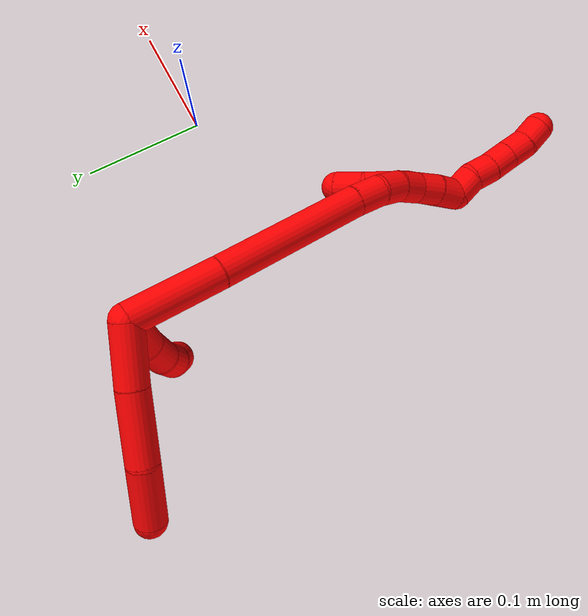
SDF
<sdf version="1.7">
 <world name="default">
  <model name="2">
   <static>0</static>
   <link name="2">
    <collision name="collision-cylinder-e_1_2_8">
     <pose>-0.012271 0.006217 -0.018693 -2.82051 -0.557111 2.11116</pose>
     <geometry><cylinder><radius>0.0125</radius><length>0.046418</length></cylinder></geometry>
     <surface>
      <friction><ode><mu>1.16</mu><mu2>1.16</mu2><slip1>0</slip1><slip2>0</slip2></ode></friction>
      <contact><ode><kp>1e+06</kp><kd>1</kd><max_vel>0</max_vel><min_depth>0.001</min_depth></ode></contact>
     </surface>
    </collision>
    <visual name="visual-cylinder-e_1_2_8">
     <pose>-0.012271 0.006217 -0.018693 -2.82051 -0.557111 2.11116</pose>
     <geometry><cylinder><radius>0.0125</radius><length>0.046418</length></cylinder></geometry>
     <material><ambient>1 0 0 1</ambient></material>
    </visual>
    <collision name="collision-cylinder-e_2_8_9">
     <pose>-0.039625 0.01814 -0.05998 -2.89423 -0.574411 2.34483</pose>
     <geometry><cylinder><radius>0.0125</radius><length>0.055517</length></cylinder></geometry>
     <surface>
      <friction><ode><mu>1.16</mu><mu2>1.16</mu2><slip1>0</slip1><slip2>0</slip2></ode></friction>
      <contact><ode><kp>1e+06</kp><kd>1</kd><max_vel>0</max_vel><min_depth>0.001</min_depth></ode></contact>
     </surface>
    </collision>
    <visual name="visual-cylinder-e_2_8_9">
     <pose>-0.039625 0.01814 -0.05998 -2.89423 -0.574411 2.34483</pose>
     <geometry><cylinder><radius>0.0125</radius><length>0.055517</length></cylinder></geometry>
     <material><ambient>1 0 0 1</ambient></material>
    </visual>
    <collision name="collision-cylinder-e_3_9_6">
     <pose>-0.06566 0.024719 -0.103948 -3.10075 -0.473192 2.97258</pose>
     <geometry><cylinder><radius>0.0125</radius><length>0.048065</length></cylinder></geometry>
     <surface>
      <friction><ode><mu>1.16</mu><mu2>1.16</mu2><slip1>0</slip1><slip2>0</slip2></ode></friction>
      <contact><ode><kp>1e+06</kp><kd>1</kd><max_vel>0</max_vel><min_depth>0.001</min_depth></ode></contact>
     </surface>
    </collision>
    <visual name="visual-cylinder-e_3_9_6">
     <pose>-0.06566 0.024719 -0.103948 -3.10075 -0.473192 2.97258</pose>
     <geometry><cylinder><radius>0.0125</radius><length>0.048065</length></cylinder></geometry>
     <material><ambient>1 0 0 1</ambient></material>
    </visual>
    <collision name="collision-cylinder-e_1_2_10">
     <pose>-0.007418 -0.008775 -0.012335 2.5233 -0.455663 -1.25586</pose>
     <geometry><cylinder><radius>0.0125</radius><length>0.033716</length></cylinder></geometry>
     <surface>
      <friction><ode><mu>1.16</mu><mu2>1.16</mu2><slip1>0</slip1><slip2>0</slip2></ode></friction>
      <contact><ode><kp>1e+06</kp><kd>1</kd><max_vel>0</max_vel><min_depth>0.001</min_depth></ode></contact>
     </surface>
    </collision>
    <visual name="visual-cylinder-e_1_2_10">
     <pose>-0.007418 -0.008775 -0.012335 2.5233 -0.455663 -1.25586</pose>
     <geometry><cylinder><radius>0.0125</radius><length>0.033716</length></cylinder></geometry>
     <material><ambient>1 0 0 1</ambient></material>
    </visual>
    <collision name="collision-cylinder-e_2_10_11">
     <pose>-0.019584 -0.025757 -0.033167 2.37346 -0.382098 -0.892714</pose>
     <geometry><cylinder><radius>0.0125</radius><length>0.025463</length></cylinder></geometry>
     <surface>
      <friction><ode><mu>1.16</mu><mu2>1.16</mu2><slip1>0</slip1><slip2>0</slip2></ode></friction>
      <contact><ode><kp>1e+06</kp><kd>1</kd><max_vel>0</max_vel><min_depth>0.001</min_depth></ode></contact>
     </surface>
    </collision>
    <visual name="visual-cylinder-e_2_10_11">
     <pose>-0.019584 -0.025757 -0.033167 2.37346 -0.382098 -0.892714</pose>
     <geometry><cylinder><radius>0.0125</radius><length>0.025463</length></cylinder></geometry>
     <material><ambient>1 0 0 1</ambient></material>
    </visual>
    <collision name="collision-cylinder-e_3_11_12">
     <pose>-0.026692 -0.041776 -0.047529 2.21491 -0.237163 -0.468185</pose>
     <geometry><cylinder><radius>0.0125</radius><length>0.020099</length></cylinder></geometry>
     <surface>
      <friction><ode><mu>1.16</mu><mu2>1.16</mu2><slip1>0</slip1><slip2>0</slip2></ode></friction>
      <contact><ode><kp>1e+06</kp><kd>1</kd><max_vel>0</max_vel><min_depth>0.001</min_depth></ode></contact>
     </surface>
    </collision>
    <visual name="visual-cylinder-e_3_11_12">
     <pose>-0.026692 -0.041776 -0.047529 2.21491 -0.237163 -0.468185</pose>
     <geometry><cylinder><radius>0.0125</radius><length>0.020099</length></cylinder></geometry>
     <material><ambient>1 0 0 1</ambient></material>
    </visual>
    <collision name="collision-cylinder-e_4_12_5">
     <pose>-0.028134 -0.058509 -0.058581 2.09738 0.088869 0.154253</pose>
     <geometry><cylinder><radius>0.0125</radius><length>0.020723</length></cylinder></geometry>
     <surface>
      <friction><ode><mu>1.16</mu><mu2>1.16</mu2><slip1>0</slip1><slip2>0</slip2></ode></friction>
      <contact><ode><kp>1e+06</kp><kd>1</kd><max_vel>0</max_vel><min_depth>0.001</min_depth></ode></contact>
     </surface>
    </collision>
    <visual name="visual-cylinder-e_4_12_5">
     <pose>-0.028134 -0.058509 -0.058581 2.09738 0.088869 0.154253</pose>
     <geometry><cylinder><radius>0.0125</radius><length>0.020723</length></cylinder></geometry>
     <material><ambient>1 0 0 1</ambient></material>
    </visual>
    <collision name="collision-cylinder-e_1_2_13">
     <pose>-0.016958 -0.027421 0.016689 1.02406 -0.486005 -0.276871</pose>
     <geometry><cylinder><radius>0.0125</radius><length>0.072608</length></cylinder></geometry>
     <surface>
      <friction><ode><mu>1.16</mu><mu2>1.16</mu2><slip1>0</slip1><slip2>0</slip2></ode></friction>
      <contact><ode><kp>1e+06</kp><kd>1</kd><max_vel>0</max_vel><min_depth>0.001</min_depth></ode></contact>
     </surface>
    </collision>
    <visual name="visual-cylinder-e_1_2_13">
     <pose>-0.016958 -0.027421 0.016689 1.02406 -0.486005 -0.276871</pose>
     <geometry><cylinder><radius>0.0125</radius><length>0.072608</length></cylinder></geometry>
     <material><ambient>1 0 0 1</ambient></material>
    </visual>
    <collision name="collision-cylinder-e_2_13_14">
     <pose>-0.060354 -0.10376 0.05894 1.08928 -0.44672 -0.273476</pose>
     <geometry><cylinder><radius>0.0125</radius><length>0.122399</length></cylinder></geometry>
     <surface>
      <friction><ode><mu>1.16</mu><mu2>1.16</mu2><slip1>0</slip1><slip2>0</slip2></ode></friction>
      <contact><ode><kp>1e+06</kp><kd>1</kd><max_vel>0</max_vel><min_depth>0.001</min_depth></ode></contact>
     </surface>
    </collision>
    <visual name="visual-cylinder-e_2_13_14">
     <pose>-0.060354 -0.10376 0.05894 1.08928 -0.44672 -0.273476</pose>
     <geometry><cylinder><radius>0.0125</radius><length>0.122399</length></cylinder></geometry>
     <material><ambient>1 0 0 1</ambient></material>
    </visual>
    <collision name="collision-cylinder-e_3_14_15">
     <pose>-0.092633 -0.16224 0.089096 1.12297 -0.503233 -0.320623</pose>
     <geometry><cylinder><radius>0.0125</radius><length>0.02422</length></cylinder></geometry>
     <surface>
      <friction><ode><mu>1.16</mu><mu2>1.16</mu2><slip1>0</slip1><slip2>0</slip2></ode></friction>
      <contact><ode><kp>1e+06</kp><kd>1</kd><max_vel>0</max_vel><min_depth>0.001</min_depth></ode></contact>
     </surface>
    </collision>
    <visual name="visual-cylinder-e_3_14_15">
     <pose>-0.092633 -0.16224 0.089096 1.12297 -0.503233 -0.320623</pose>
     <geometry><cylinder><radius>0.0125</radius><length>0.02422</length></cylinder></geometry>
     <material><ambient>1 0 0 1</ambient></material>
    </visual>
    <collision name="collision-cylinder-e_4_15_16">
     <pose>-0.103609 -0.180615 0.095125 1.40923 -0.522019 -0.44661</pose>
     <geometry><cylinder><radius>0.0125</radius><length>0.020602</length></cylinder></geometry>
     <surface>
      <friction><ode><mu>1.16</mu><mu2>1.16</mu2><slip1>0</slip1><slip2>0</slip2></ode></friction>
      <contact><ode><kp>1e+06</kp><kd>1</kd><max_vel>0</max_vel><min_depth>0.001</min_depth></ode></contact>
     </surface>
    </collision>
    <visual name="visual-cylinder-e_4_15_16">
     <pose>-0.103609 -0.180615 0.095125 1.40923 -0.522019 -0.44661</pose>
     <geometry><cylinder><radius>0.0125</radius><length>0.020602</length></cylinder></geometry>
     <material><ambient>1 0 0 1</ambient></material>
    </visual>
    <collision name="collision-cylinder-e_5_16_17">
     <pose>-0.11493 -0.197357 0.096208 1.61537 -0.661906 -0.689798</pose>
     <geometry><cylinder><radius>0.0125</radius><length>0.020122</length></cylinder></geometry>
     <surface>
      <friction><ode><mu>1.16</mu><mu2>1.16</mu2><slip1>0</slip1><slip2>0</slip2></ode></friction>
      <contact><ode><kp>1e+06</kp><kd>1</kd><max_vel>0</max_vel><min_depth>0.001</min_depth></ode></contact>
     </surface>
    </collision>
    <visual name="visual-cylinder-e_5_16_17">
     <pose>-0.11493 -0.197357 0.096208 1.61537 -0.661906 -0.689798</pose>
     <geometry><cylinder><radius>0.0125</radius><length>0.020122</length></cylinder></geometry>
     <material><ambient>1 0 0 1</ambient></material>
    </visual>
    <collision name="collision-cylinder-e_6_17_18">
     <pose>-0.128619 -0.211863 0.096581 1.46081 -0.848138 -0.768505</pose>
     <geometry><cylinder><radius>0.0125</radius><length>0.020013</length></cylinder></geometry>
     <surface>
      <friction><ode><mu>1.16</mu><mu2>1.16</mu2><slip1>0</slip1><slip2>0</slip2></ode></friction>
      <contact><ode><kp>1e+06</kp><kd>1</kd><max_vel>0</max_vel><min_depth>0.001</min_depth></ode></contact>
     </surface>
    </collision>
    <visual name="visual-cylinder-e_6_17_18">
     <pose>-0.128619 -0.211863 0.096581 1.46081 -0.848138 -0.768505</pose>
     <geometry><cylinder><radius>0.0125</radius><length>0.020013</length></cylinder></geometry>
     <material><ambient>1 0 0 1</ambient></material>
    </visual>
    <collision name="collision-cylinder-e_7_18_1">
     <pose>-0.143885 -0.224762 0.096885 1.63755 -0.886266 -0.939105</pose>
     <geometry><cylinder><radius>0.0125</radius><length>0.020036</length></cylinder></geometry>
     <surface>
      <friction><ode><mu>1.16</mu><mu2>1.16</mu2><slip1>0</slip1><slip2>0</slip2></ode></friction>
      <contact><ode><kp>1e+06</kp><kd>1</kd><max_vel>0</max_vel><min_depth>0.001</min_depth></ode></contact>
     </surface>
    </collision>
    <visual name="visual-cylinder-e_7_18_1">
     <pose>-0.143885 -0.224762 0.096885 1.63755 -0.886266 -0.939105</pose>
     <geometry><cylinder><radius>0.0125</radius><length>0.020036</length></cylinder></geometry>
     <material><ambient>1 0 0 1</ambient></material>
    </visual>
    <collision name="collision-cylinder-e_1_1_19">
     <pose>-0.132397 -0.224514 0.092065 -2.16075 1.1812 -1.7965</pose>
     <geometry><cylinder><radius>0.0125</radius><length>0.041617</length></cylinder></geometry>
     <surface>
      <friction><ode><mu>1.16</mu><mu2>1.16</mu2><slip1>0</slip1><slip2>0</slip2></ode></friction>
      <contact><ode><kp>1e+06</kp><kd>1</kd><max_vel>0</max_vel><min_depth>0.001</min_depth></ode></contact>
     </surface>
    </collision>
    <visual name="visual-cylinder-e_1_1_19">
     <pose>-0.132397 -0.224514 0.092065 -2.16075 1.1812 -1.7965</pose>
     <geometry><cylinder><radius>0.0125</radius><length>0.041617</length></cylinder></geometry>
     <material><ambient>1 0 0 1</ambient></material>
    </visual>
    <collision name="collision-cylinder-e_2_19_20">
     <pose>-0.098422 -0.213029 0.080372 -2.54854 1.03221 -2.15368</pose>
     <geometry><cylinder><radius>0.0125</radius><length>0.034307</length></cylinder></geometry>
     <surface>
      <friction><ode><mu>1.16</mu><mu2>1.16</mu2><slip1>0</slip1><slip2>0</slip2></ode></friction>
      <contact><ode><kp>1e+06</kp><kd>1</kd><max_vel>0</max_vel><min_depth>0.001</min_depth></ode></contact>
     </surface>
    </collision>
    <visual name="visual-cylinder-e_2_19_20">
     <pose>-0.098422 -0.213029 0.080372 -2.54854 1.03221 -2.15368</pose>
     <geometry><cylinder><radius>0.0125</radius><length>0.034307</length></cylinder></geometry>
     <material><ambient>1 0 0 1</ambient></material>
    </visual>
    <collision name="collision-cylinder-e_3_20_4">
     <pose>-0.073345 -0.208118 0.066932 3.14067 1.03516 3.13997</pose>
     <geometry><cylinder><radius>0.0125</radius><length>0.024075</length></cylinder></geometry>
     <surface>
      <friction><ode><mu>1.16</mu><mu2>1.16</mu2><slip1>0</slip1><slip2>0</slip2></ode></friction>
      <contact><ode><kp>1e+06</kp><kd>1</kd><max_vel>0</max_vel><min_depth>0.001</min_depth></ode></contact>
     </surface>
    </collision>
    <visual name="visual-cylinder-e_3_20_4">
     <pose>-0.073345 -0.208118 0.066932 3.14067 1.03516 3.13997</pose>
     <geometry><cylinder><radius>0.0125</radius><length>0.024075</length></cylinder></geometry>
     <material><ambient>1 0 0 1</ambient></material>
    </visual>
    <collision name="collision-cylinder-e_1_1_21">
     <pose>-0.153795 -0.237893 0.103462 0.771722 -0.216548 -0.088255</pose>
     <geometry><cylinder><radius>0.0125</radius><length>0.02</length></cylinder></geometry>
     <surface>
      <friction><ode><mu>1.16</mu><mu2>1.16</mu2><slip1>0</slip1><slip2>0</slip2></ode></friction>
      <contact><ode><kp>1e+06</kp><kd>1</kd><max_vel>0</max_vel><min_depth>0.001</min_depth></ode></contact>
     </surface>
    </collision>
    <visual name="visual-cylinder-e_1_1_21">
     <pose>-0.153795 -0.237893 0.103462 0.771722 -0.216548 -0.088255</pose>
     <geometry><cylinder><radius>0.0125</radius><length>0.02</length></cylinder></geometry>
     <material><ambient>1 0 0 1</ambient></material>
    </visual>
    <collision name="collision-cylinder-e_2_21_22">
     <pose>-0.160695 -0.252013 0.11536 0.980425 -0.49522 -0.268197</pose>
     <geometry><cylinder><radius>0.0125</radius><length>0.02</length></cylinder></geometry>
     <surface>
      <friction><ode><mu>1.16</mu><mu2>1.16</mu2><slip1>0</slip1><slip2>0</slip2></ode></friction>
      <contact><ode><kp>1e+06</kp><kd>1</kd><max_vel>0</max_vel><min_depth>0.001</min_depth></ode></contact>
     </surface>
    </collision>
    <visual name="visual-cylinder-e_2_21_22">
     <pose>-0.160695 -0.252013 0.11536 0.980425 -0.49522 -0.268197</pose>
     <geometry><cylinder><radius>0.0125</radius><length>0.02</length></cylinder></geometry>
     <material><ambient>1 0 0 1</ambient></material>
    </visual>
    <collision name="collision-cylinder-e_3_22_23">
     <pose>-0.1692 -0.26663 0.12596 0.908149 -0.384637 -0.189518</pose>
     <geometry><cylinder><radius>0.0125</radius><length>0.02</length></cylinder></geometry>
     <surface>
      <friction><ode><mu>1.16</mu><mu2>1.16</mu2><slip1>0</slip1><slip2>0</slip2></ode></friction>
      <contact><ode><kp>1e+06</kp><kd>1</kd><max_vel>0</max_vel><min_depth>0.001</min_depth></ode></contact>
     </surface>
    </collision>
    <visual name="visual-cylinder-e_3_22_23">
     <pose>-0.1692 -0.26663 0.12596 0.908149 -0.384637 -0.189518</pose>
     <geometry><cylinder><radius>0.0125</radius><length>0.02</length></cylinder></geometry>
     <material><ambient>1 0 0 1</ambient></material>
    </visual>
    <collision name="collision-cylinder-e_4_23_24">
     <pose>-0.177024 -0.280822 0.137665 0.853814 -0.419337 -0.192993</pose>
     <geometry><cylinder><radius>0.0125</radius><length>0.02</length></cylinder></geometry>
     <surface>
      <friction><ode><mu>1.16</mu><mu2>1.16</mu2><slip1>0</slip1><slip2>0</slip2></ode></friction>
      <contact><ode><kp>1e+06</kp><kd>1</kd><max_vel>0</max_vel><min_depth>0.001</min_depth></ode></contact>
     </surface>
    </collision>
    <visual name="visual-cylinder-e_4_23_24">
     <pose>-0.177024 -0.280822 0.137665 0.853814 -0.419337 -0.192993</pose>
     <geometry><cylinder><radius>0.0125</radius><length>0.02</length></cylinder></geometry>
     <material><ambient>1 0 0 1</ambient></material>
    </visual>
    <collision name="collision-cylinder-e_5_24_3">
     <pose>-0.182984 -0.294848 0.150407 0.814232 -0.190039 -0.082147</pose>
     <geometry><cylinder><radius>0.0125</radius><length>0.02</length></cylinder></geometry>
     <surface>
      <friction><ode><mu>1.16</mu><mu2>1.16</mu2><slip1>0</slip1><slip2>0</slip2></ode></friction>
      <contact><ode><kp>1e+06</kp><kd>1</kd><max_vel>0</max_vel><min_depth>0.001</min_depth></ode></contact>
     </surface>
    </collision>
    <visual name="visual-cylinder-e_5_24_3">
     <pose>-0.182984 -0.294848 0.150407 0.814232 -0.190039 -0.082147</pose>
     <geometry><cylinder><radius>0.0125</radius><length>0.02</length></cylinder></geometry>
     <material><ambient>1 0 0 1</ambient></material>
    </visual>
    <collision name="collision-sphere-3">
     <pose>-0.184873 -0.301989 0.157148 0 -0 0</pose>
     <geometry><sphere><radius>0.0125</radius></sphere></geometry>
     <surface>
      <friction><ode><mu>1.16</mu><mu2>1.16</mu2><slip1>0</slip1><slip2>0</slip2></ode></friction>
      <contact><ode><kp>1e+06</kp><kd>1</kd><max_vel>0</max_vel><min_depth>0.001</min_depth></ode></contact>
     </surface>
    </collision>
    <visual name="visual-sphere-3">
     <pose>-0.184873 -0.301989 0.157148 0 -0 0</pose>
     <geometry><sphere><radius>0.0125</radius></sphere></geometry>
     <material><ambient>1 0 0 1</ambient></material>
    </visual>
    <collision name="collision-sphere-24">
     <pose>-0.181095 -0.287707 0.143666 0 -0 0</pose>
     <geometry><sphere><radius>0.0125</radius></sphere></geometry>
     <surface>
      <friction><ode><mu>1.16</mu><mu2>1.16</mu2><slip1>0</slip1><slip2>0</slip2></ode></friction>
      <contact><ode><kp>1e+06</kp><kd>1</kd><max_vel>0</max_vel><min_depth>0.001</min_depth></ode></contact>
     </surface>
    </collision>
    <visual name="visual-sphere-24">
     <pose>-0.181095 -0.287707 0.143666 0 -0 0</pose>
     <geometry><sphere><radius>0.0125</radius></sphere></geometry>
     <material><ambient>1 0 0 1</ambient></material>
    </visual>
    <collision name="collision-sphere-23">
     <pose>-0.172952 -0.273938 0.131663 0 -0 0</pose>
     <geometry><sphere><radius>0.0125</radius></sphere></geometry>
     <surface>
      <friction><ode><mu>1.16</mu><mu2>1.16</mu2><slip1>0</slip1><slip2>0</slip2></ode></friction>
      <contact><ode><kp>1e+06</kp><kd>1</kd><max_vel>0</max_vel><min_depth>0.001</min_depth></ode></contact>
     </surface>
    </collision>
    <visual name="visual-sphere-23">
     <pose>-0.172952 -0.273938 0.131663 0 -0 0</pose>
     <geometry><sphere><radius>0.0125</radius></sphere></geometry>
     <material><ambient>1 0 0 1</ambient></material>
    </visual>
    <collision name="collision-sphere-22">
     <pose>-0.165448 -0.259322 0.120258 0 -0 0</pose>
     <geometry><sphere><radius>0.0125</radius></sphere></geometry>
     <surface>
      <friction><ode><mu>1.16</mu><mu2>1.16</mu2><slip1>0</slip1><slip2>0</slip2></ode></friction>
      <contact><ode><kp>1e+06</kp><kd>1</kd><max_vel>0</max_vel><min_depth>0.001</min_depth></ode></contact>
     </surface>
    </collision>
    <visual name="visual-sphere-22">
     <pose>-0.165448 -0.259322 0.120258 0 -0 0</pose>
     <geometry><sphere><radius>0.0125</radius></sphere></geometry>
     <material><ambient>1 0 0 1</ambient></material>
    </visual>
    <collision name="collision-sphere-21">
     <pose>-0.155943 -0.244704 0.110462 0 -0 0</pose>
     <geometry><sphere><radius>0.0125</radius></sphere></geometry>
     <surface>
      <friction><ode><mu>1.16</mu><mu2>1.16</mu2><slip1>0</slip1><slip2>0</slip2></ode></friction>
      <contact><ode><kp>1e+06</kp><kd>1</kd><max_vel>0</max_vel><min_depth>0.001</min_depth></ode></contact>
     </surface>
    </collision>
    <visual name="visual-sphere-21">
     <pose>-0.155943 -0.244704 0.110462 0 -0 0</pose>
     <geometry><sphere><radius>0.0125</radius></sphere></geometry>
     <material><ambient>1 0 0 1</ambient></material>
    </visual>
    <collision name="collision-sphere-4">
     <pose>-0.062993 -0.208123 0.060789 0 -0 0</pose>
     <geometry><sphere><radius>0.0125</radius></sphere></geometry>
     <surface>
      <friction><ode><mu>1.16</mu><mu2>1.16</mu2><slip1>0</slip1><slip2>0</slip2></ode></friction>
      <contact><ode><kp>1e+06</kp><kd>1</kd><max_vel>0</max_vel><min_depth>0.001</min_depth></ode></contact>
     </surface>
    </collision>
    <visual name="visual-sphere-4">
     <pose>-0.062993 -0.208123 0.060789 0 -0 0</pose>
     <geometry><sphere><radius>0.0125</radius></sphere></geometry>
     <material><ambient>1 0 0 1</ambient></material>
    </visual>
    <collision name="collision-sphere-20">
     <pose>-0.083697 -0.208112 0.073076 0 -0 0</pose>
     <geometry><sphere><radius>0.0125</radius></sphere></geometry>
     <surface>
      <friction><ode><mu>1.16</mu><mu2>1.16</mu2><slip1>0</slip1><slip2>0</slip2></ode></friction>
      <contact><ode><kp>1e+06</kp><kd>1</kd><max_vel>0</max_vel><min_depth>0.001</min_depth></ode></contact>
     </surface>
    </collision>
    <visual name="visual-sphere-20">
     <pose>-0.083697 -0.208112 0.073076 0 -0 0</pose>
     <geometry><sphere><radius>0.0125</radius></sphere></geometry>
     <material><ambient>1 0 0 1</ambient></material>
    </visual>
    <collision name="collision-sphere-11">
     <pose>-0.024331 -0.033965 -0.041663 0 -0 0</pose>
     <geometry><sphere><radius>0.0125</radius></sphere></geometry>
     <surface>
      <friction><ode><mu>1.16</mu><mu2>1.16</mu2><slip1>0</slip1><slip2>0</slip2></ode></friction>
      <contact><ode><kp>1e+06</kp><kd>1</kd><max_vel>0</max_vel><min_depth>0.001</min_depth></ode></contact>
     </surface>
    </collision>
    <visual name="visual-sphere-11">
     <pose>-0.024331 -0.033965 -0.041663 0 -0 0</pose>
     <geometry><sphere><radius>0.0125</radius></sphere></geometry>
     <material><ambient>1 0 0 1</ambient></material>
    </visual>
    <collision name="collision-sphere-10">
     <pose>-0.014837 -0.017549 -0.024671 0 -0 0</pose>
     <geometry><sphere><radius>0.0125</radius></sphere></geometry>
     <surface>
      <friction><ode><mu>1.16</mu><mu2>1.16</mu2><slip1>0</slip1><slip2>0</slip2></ode></friction>
      <contact><ode><kp>1e+06</kp><kd>1</kd><max_vel>0</max_vel><min_depth>0.001</min_depth></ode></contact>
     </surface>
    </collision>
    <visual name="visual-sphere-10">
     <pose>-0.014837 -0.017549 -0.024671 0 -0 0</pose>
     <geometry><sphere><radius>0.0125</radius></sphere></geometry>
     <material><ambient>1 0 0 1</ambient></material>
    </visual>
    <collision name="collision-sphere-6">
     <pose>-0.076612 0.025593 -0.125322 0 -0 0</pose>
     <geometry><sphere><radius>0.0125</radius></sphere></geometry>
     <surface>
      <friction><ode><mu>1.16</mu><mu2>1.16</mu2><slip1>0</slip1><slip2>0</slip2></ode></friction>
      <contact><ode><kp>1e+06</kp><kd>1</kd><max_vel>0</max_vel><min_depth>0.001</min_depth></ode></contact>
     </surface>
    </collision>
    <visual name="visual-sphere-6">
     <pose>-0.076612 0.025593 -0.125322 0 -0 0</pose>
     <geometry><sphere><radius>0.0125</radius></sphere></geometry>
     <material><ambient>1 0 0 1</ambient></material>
    </visual>
    <collision name="collision-sphere-9">
     <pose>-0.054708 0.023846 -0.082574 0 -0 0</pose>
     <geometry><sphere><radius>0.0125</radius></sphere></geometry>
     <surface>
      <friction><ode><mu>1.16</mu><mu2>1.16</mu2><slip1>0</slip1><slip2>0</slip2></ode></friction>
      <contact><ode><kp>1e+06</kp><kd>1</kd><max_vel>0</max_vel><min_depth>0.001</min_depth></ode></contact>
     </surface>
    </collision>
    <visual name="visual-sphere-9">
     <pose>-0.054708 0.023846 -0.082574 0 -0 0</pose>
     <geometry><sphere><radius>0.0125</radius></sphere></geometry>
     <material><ambient>1 0 0 1</ambient></material>
    </visual>
    <collision name="collision-sphere-2">
     <geometry><sphere><radius>0.0125</radius></sphere></geometry>
     <surface>
      <friction><ode><mu>1.16</mu><mu2>1.16</mu2><slip1>0</slip1><slip2>0</slip2></ode></friction>
      <contact><ode><kp>1e+06</kp><kd>1</kd><max_vel>0</max_vel><min_depth>0.001</min_depth></ode></contact>
     </surface>
    </collision>
    <visual name="visual-sphere-2">
     <geometry><sphere><radius>0.0125</radius></sphere></geometry>
     <material><ambient>1 0 0 1</ambient></material>
    </visual>
    <collision name="collision-sphere-19">
     <pose>-0.113147 -0.217947 0.087669 0 -0 0</pose>
     <geometry><sphere><radius>0.0125</radius></sphere></geometry>
     <surface>
      <friction><ode><mu>1.16</mu><mu2>1.16</mu2><slip1>0</slip1><slip2>0</slip2></ode></friction>
      <contact><ode><kp>1e+06</kp><kd>1</kd><max_vel>0</max_vel><min_depth>0.001</min_depth></ode></contact>
     </surface>
    </collision>
    <visual name="visual-sphere-19">
     <pose>-0.113147 -0.217947 0.087669 0 -0 0</pose>
     <geometry><sphere><radius>0.0125</radius></sphere></geometry>
     <material><ambient>1 0 0 1</ambient></material>
    </visual>
    <collision name="collision-sphere-8">
     <pose>-0.024543 0.012434 -0.037386 0 -0 0</pose>
     <geometry><sphere><radius>0.0125</radius></sphere></geometry>
     <surface>
      <friction><ode><mu>1.16</mu><mu2>1.16</mu2><slip1>0</slip1><slip2>0</slip2></ode></friction>
      <contact><ode><kp>1e+06</kp><kd>1</kd><max_vel>0</max_vel><min_depth>0.001</min_depth></ode></contact>
     </surface>
    </collision>
    <visual name="visual-sphere-8">
     <pose>-0.024543 0.012434 -0.037386 0 -0 0</pose>
     <geometry><sphere><radius>0.0125</radius></sphere></geometry>
     <material><ambient>1 0 0 1</ambient></material>
    </visual>
    <collision name="collision-sphere-12">
     <pose>-0.029053 -0.049587 -0.053395 0 -0 0</pose>
     <geometry><sphere><radius>0.0125</radius></sphere></geometry>
     <surface>
      <friction><ode><mu>1.16</mu><mu2>1.16</mu2><slip1>0</slip1><slip2>0</slip2></ode></friction>
      <contact><ode><kp>1e+06</kp><kd>1</kd><max_vel>0</max_vel><min_depth>0.001</min_depth></ode></contact>
     </surface>
    </collision>
    <visual name="visual-sphere-12">
     <pose>-0.029053 -0.049587 -0.053395 0 -0 0</pose>
     <geometry><sphere><radius>0.0125</radius></sphere></geometry>
     <material><ambient>1 0 0 1</ambient></material>
    </visual>
    <collision name="collision-sphere-5">
     <pose>-0.027214 -0.067431 -0.063768 0 -0 0</pose>
     <geometry><sphere><radius>0.0125</radius></sphere></geometry>
     <surface>
      <friction><ode><mu>1.16</mu><mu2>1.16</mu2><slip1>0</slip1><slip2>0</slip2></ode></friction>
      <contact><ode><kp>1e+06</kp><kd>1</kd><max_vel>0</max_vel><min_depth>0.001</min_depth></ode></contact>
     </surface>
    </collision>
    <visual name="visual-sphere-5">
     <pose>-0.027214 -0.067431 -0.063768 0 -0 0</pose>
     <geometry><sphere><radius>0.0125</radius></sphere></geometry>
     <material><ambient>1 0 0 1</ambient></material>
    </visual>
    <collision name="collision-sphere-13">
     <pose>-0.033915 -0.054842 0.033378 0 -0 0</pose>
     <geometry><sphere><radius>0.0125</radius></sphere></geometry>
     <surface>
      <friction><ode><mu>1.16</mu><mu2>1.16</mu2><slip1>0</slip1><slip2>0</slip2></ode></friction>
      <contact><ode><kp>1e+06</kp><kd>1</kd><max_vel>0</max_vel><min_depth>0.001</min_depth></ode></contact>
     </surface>
    </collision>
    <visual name="visual-sphere-13">
     <pose>-0.033915 -0.054842 0.033378 0 -0 0</pose>
     <geometry><sphere><radius>0.0125</radius></sphere></geometry>
     <material><ambient>1 0 0 1</ambient></material>
    </visual>
    <collision name="collision-sphere-14">
     <pose>-0.086793 -0.152678 0.084502 0 -0 0</pose>
     <geometry><sphere><radius>0.0125</radius></sphere></geometry>
     <surface>
      <friction><ode><mu>1.16</mu><mu2>1.16</mu2><slip1>0</slip1><slip2>0</slip2></ode></friction>
      <contact><ode><kp>1e+06</kp><kd>1</kd><max_vel>0</max_vel><min_depth>0.001</min_depth></ode></contact>
     </surface>
    </collision>
    <visual name="visual-sphere-14">
     <pose>-0.086793 -0.152678 0.084502 0 -0 0</pose>
     <geometry><sphere><radius>0.0125</radius></sphere></geometry>
     <material><ambient>1 0 0 1</ambient></material>
    </visual>
    <collision name="collision-sphere-15">
     <pose>-0.098473 -0.171802 0.093689 0 -0 0</pose>
     <geometry><sphere><radius>0.0125</radius></sphere></geometry>
     <surface>
      <friction><ode><mu>1.16</mu><mu2>1.16</mu2><slip1>0</slip1><slip2>0</slip2></ode></friction>
      <contact><ode><kp>1e+06</kp><kd>1</kd><max_vel>0</max_vel><min_depth>0.001</min_depth></ode></contact>
     </surface>
    </collision>
    <visual name="visual-sphere-15">
     <pose>-0.098473 -0.171802 0.093689 0 -0 0</pose>
     <geometry><sphere><radius>0.0125</radius></sphere></geometry>
     <material><ambient>1 0 0 1</ambient></material>
    </visual>
    <collision name="collision-sphere-16">
     <pose>-0.108746 -0.189428 0.096562 0 -0 0</pose>
     <geometry><sphere><radius>0.0125</radius></sphere></geometry>
     <surface>
      <friction><ode><mu>1.16</mu><mu2>1.16</mu2><slip1>0</slip1><slip2>0</slip2></ode></friction>
      <contact><ode><kp>1e+06</kp><kd>1</kd><max_vel>0</max_vel><min_depth>0.001</min_depth></ode></contact>
     </surface>
    </collision>
    <visual name="visual-sphere-16">
     <pose>-0.108746 -0.189428 0.096562 0 -0 0</pose>
     <geometry><sphere><radius>0.0125</radius></sphere></geometry>
     <material><ambient>1 0 0 1</ambient></material>
    </visual>
    <collision name="collision-sphere-17">
     <pose>-0.121113 -0.205285 0.095855 0 -0 0</pose>
     <geometry><sphere><radius>0.0125</radius></sphere></geometry>
     <surface>
      <friction><ode><mu>1.16</mu><mu2>1.16</mu2><slip1>0</slip1><slip2>0</slip2></ode></friction>
      <contact><ode><kp>1e+06</kp><kd>1</kd><max_vel>0</max_vel><min_depth>0.001</min_depth></ode></contact>
     </surface>
    </collision>
    <visual name="visual-sphere-17">
     <pose>-0.121113 -0.205285 0.095855 0 -0 0</pose>
     <geometry><sphere><radius>0.0125</radius></sphere></geometry>
     <material><ambient>1 0 0 1</ambient></material>
    </visual>
    <collision name="collision-sphere-18">
     <pose>-0.136124 -0.218441 0.097307 0 -0 0</pose>
     <geometry><sphere><radius>0.0125</radius></sphere></geometry>
     <surface>
      <friction><ode><mu>1.16</mu><mu2>1.16</mu2><slip1>0</slip1><slip2>0</slip2></ode></friction>
      <contact><ode><kp>1e+06</kp><kd>1</kd><max_vel>0</max_vel><min_depth>0.001</min_depth></ode></contact>
     </surface>
    </collision>
    <visual name="visual-sphere-18">
     <pose>-0.136124 -0.218441 0.097307 0 -0 0</pose>
     <geometry><sphere><radius>0.0125</radius></sphere></geometry>
     <material><ambient>1 0 0 1</ambient></material>
    </visual>
    <collision name="collision-sphere-1">
     <pose>-0.151646 -0.231082 0.096462 0 -0 0</pose>
     <geometry><sphere><radius>0.0125</radius></sphere></geometry>
     <surface>
      <friction><ode><mu>1.16</mu><mu2>1.16</mu2><slip1>0</slip1><slip2>0</slip2></ode></friction>
      <contact><ode><kp>1e+06</kp><kd>1</kd><max_vel>0</max_vel><min_depth>0.001</min_depth></ode></contact>
     </surface>
    </collision>
    <visual name="visual-sphere-1">
     <pose>-0.151646 -0.231082 0.096462 0 -0 0</pose>
     <geometry><sphere><radius>0.0125</radius></sphere></geometry>
     <material><ambient>1 0 0 1</ambient></material>
    </visual>
    <inertial>
     <pose>-0.074782 -0.111844 0.03545 0 -0 0</pose>
     <mass>0.75</mass>
     <inertia><ixx>9.8e-05</ixx><ixy>0</ixy><ixz>0</ixz><iyy>8.9e-05</iyy><iyz>0</iyz><izz>0.000255</izz></inertia>
    </inertial>
   </link>
   <pose>-0.174645 0.119514 0.105933 0.706129 -0.096359 0.568797</pose>
  </model>
 </world>
</sdf>
